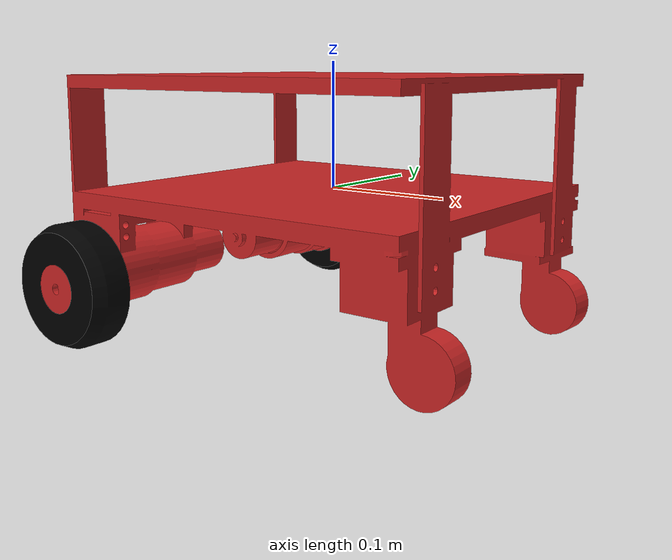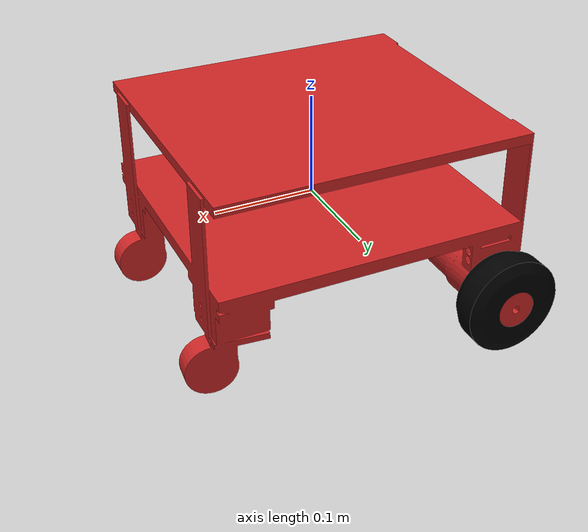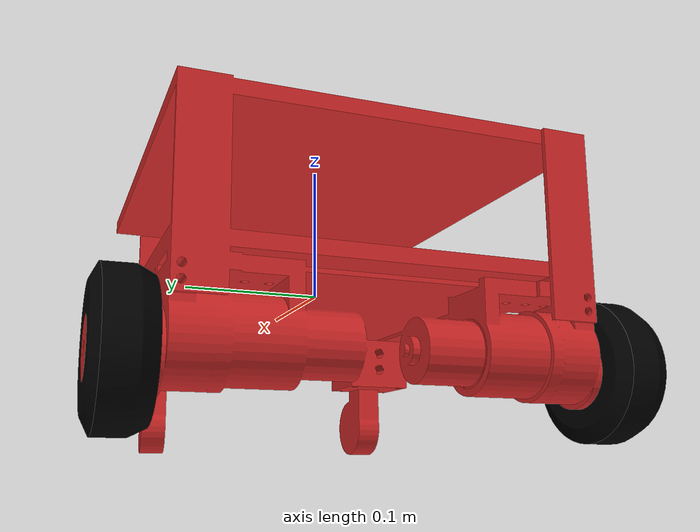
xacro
<?xml version="1.0" encoding="UTF-8" ?>
<robot name="mybot" xmlns:xacro="http://www.ros.org/wiki/xacro">
    <xacro:property name="cameraSize" value="0.05"/>
    <xacro:property name="cameraMass" value="0.1"/>
    <xacro:include filename="$(find mybot_description)/urdf/mybot.gazebo" />
    <!--base_footprint-->
    <link name="base_footprint">
        <inertial>
            <mass value="0.0001"/>
            <origin xyz="0 0 0"/>
            <inertia ixx="0.0001" ixy="0.0" ixz="0.0"
                     iyy="0.0001" iyz="0.0"
                     izz="0.0001"/>
        </inertial>
        <visual>
            <geometry>
                <box size="0.001 0.001 0.001"/>
            </geometry>
            <origin rpy="0 0 0" xyz="0 0 0"/>
        </visual>
    </link>

    <!--base_link-->
    <link name='base_link'>
        <pose>0 0 0 0 0 0</pose>

        <inertial>
            <mass value="5.0"/>
            <origin xyz="0.0 0 0" rpy=" 0 0 0"/>
            <inertia
                    ixx="0.1" ixy="0" ixz="0"
                    iyy="0.1" iyz="0"
                    izz="0.1"
            />
        </inertial>

        <collision name='collision'>
            <geometry>
                <mesh filename="package://mybot_description/meshes/base_link.STL"/>
            </geometry>
        </collision>

        <visual name='base_link_visual'>
            <origin xyz="0 0 0" rpy=" 0 0 0"/>
            <geometry>
                <mesh filename="package://mybot_description/meshes/base_link.STL"/>
            </geometry>
        </visual>
    </link>

    <!--left wheel-->
    <link name="left_wheel">
        <collision name="collision">
            <origin xyz="0 0 0" rpy="0 1.5707 1.5707"/>
            <geometry>
                <mesh filename="package://mybot_description/meshes/wheel.STL"/>
            </geometry>
        </collision>
        <visual name="left_wheel_visual">
            <origin xyz="0 0 0" rpy="0 1.5707 1.5707"/>
            <geometry>
                <mesh filename="package://mybot_description/meshes/wheel.STL"/>
            </geometry>
            <material name="black">
                <color rgba="0.0 0.0 0.0 1"/>
            </material>
        </visual>
        <inertial>
            <origin xyz="0 0 0" rpy="0 1.5707 1.5707"/>
            <mass value="0.5"/>
            <inertia
                    ixx=".1" ixy="0.0" ixz="0.0"
                    iyy=".1" iyz="0.0"
                    izz=".1"/>
        </inertial>
    </link>

    <!--rifht wheel-->
    <link name="right_wheel">
        <collision name="collision">
            <origin xyz="0 0 0" rpy="0 1.5707 1.5707"/>
            <geometry>
                <mesh filename="package://mybot_description/meshes/wheel.STL"/>
            </geometry>
        </collision>
        <visual name="right_wheel_visual">
            <origin xyz="0 0 0" rpy="0 1.5707 1.5707"/>
            <geometry>
                <mesh filename="package://mybot_description/meshes/wheel.STL"/>
            </geometry>
            <material name="black">
                <color rgba="0.0 0.0 0.0 1"/>
            </material>
        </visual>
        <inertial>
            <origin xyz="0 0 0" rpy="0 1.5707 1.5707"/>
            <mass value="0.5"/>
            <inertia
                    ixx=".1" ixy="0.0" ixz="0.0"
                    iyy=".1" iyz="0.0"
                    izz=".1"/>
        </inertial>
    </link>

    <!--joints-->
    <joint name="base_footprint_joint" type="fixed">
        <origin xyz="0 0 0"/>
        <parent link="base_footprint"/>
        <child link="base_link"/>
    </joint>

    <joint type="continuous" name="left_wheel_joint">
        <origin xyz="-0.12402 0.15902 -0.06636" rpy="0 0 0"/>
        <child link="left_wheel"/>
        <parent link="base_link"/>
        <axis xyz="0 1 0" rpy="0 0 0"/>
        <limit effort="10000" velocity="1000"/>
        <joint_properties damping="1.0" friction="1.0"/>
    </joint>

    <joint type="continuous" name="right_wheel_joint">
        <origin xyz="-0.12402 -0.15902 -0.06636" rpy="0 0 0"/>
        <child link="right_wheel"/>
        <parent link="base_link"/>
        <axis xyz="0 1 0" rpy="0 0 0"/>
        <limit effort="10000" velocity="1000"/>
        <joint_properties damping="1.0" friction="1.0"/>
    </joint>
</robot>
